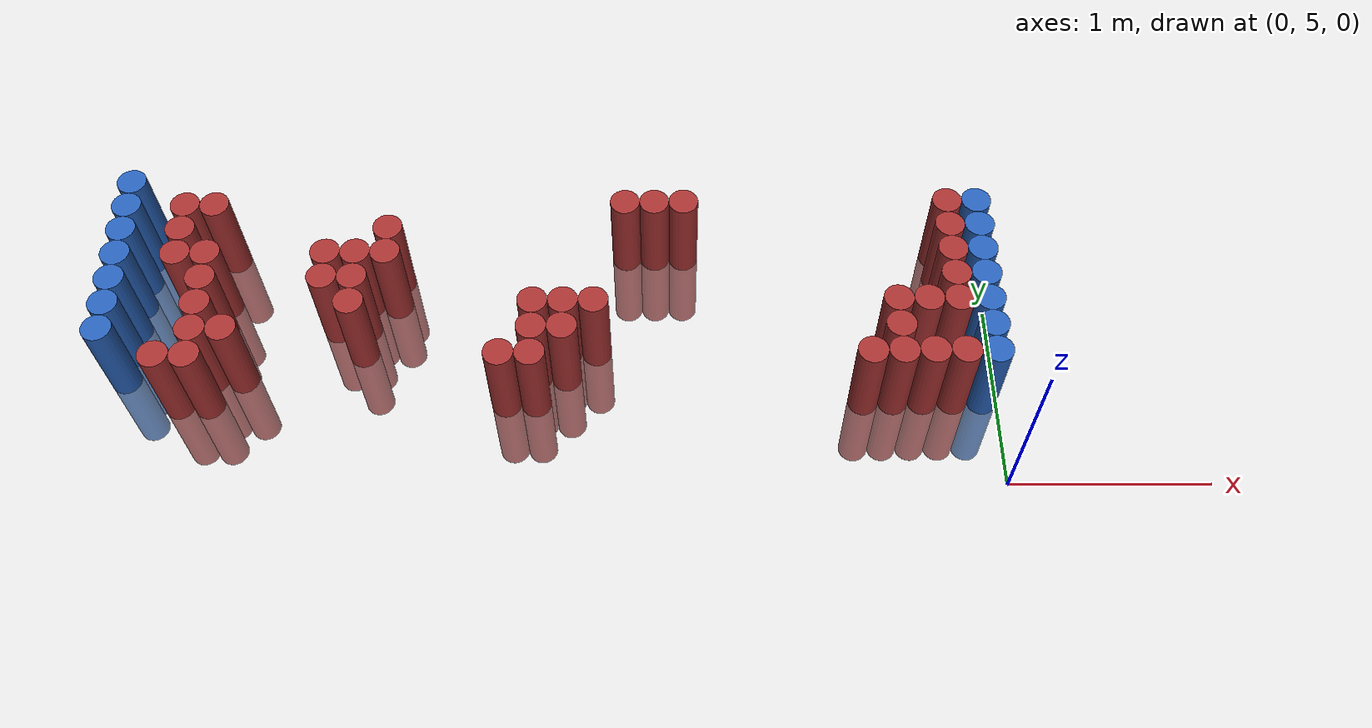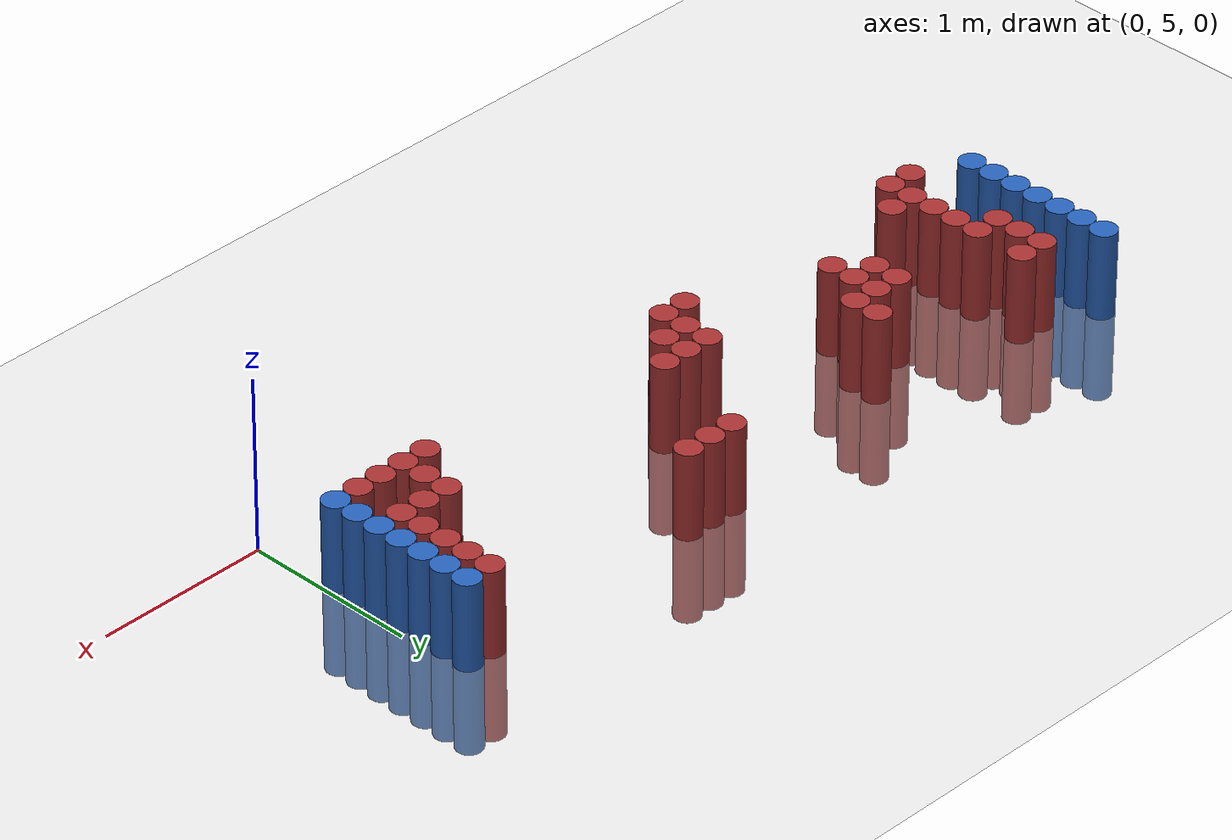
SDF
<sdf version="1.6">
 <world name="default">
  <model name="ground_plane">
   <static>1</static>
   <link name="link">
    <collision name="collision">
     <geometry><plane><normal>0 0 1</normal><size>100 100</size></plane></geometry>
     <surface><friction><ode><mu>100</mu><mu2>50</mu2></ode></friction></surface>
    </collision>
    <visual name="visual">
     <cast_shadows>0</cast_shadows>
     <geometry><plane><normal>0 0 1</normal><size>100 100</size></plane></geometry>
     <material>
      <script><uri>file://media/materials/scripts/gazebo.material</uri><name>Gazebo/Grey</name></script>
     </material>
    </visual>
   </link>
  </model>
  <model name="unit_cylinder_99">
   <static>1</static>
   <pose>-4.425000 5.625000 0.000000 0.000000 0.000000 0.000000</pose>
   <link name="link">
    <inertial>
     <mass>1</mass>
     <inertia><ixx>0.145833</ixx><ixy>0</ixy><ixz>0</ixz><iyy>0.145833</iyy><iyz>0</iyz><izz>0.125</izz></inertia>
    </inertial>
    <collision name="collision">
     <geometry><cylinder><radius>0.075000</radius><length>1</length></cylinder></geometry>
    </collision>
    <visual name="visual">
     <geometry><cylinder><radius>0.075000</radius><length>1</length></cylinder></geometry>
     <material>
      <ambient>0.152000 0.379000 0.720000 1</ambient>
      <diffuse>0.152000 0.379000 0.720000 1</diffuse>
     </material>
     <material>
      <script><name>Gazebo/Grey</name><uri>file://media/materials/scripts/gazebo.material</uri></script>
     </material>
    </visual>
   </link>
  </model>
  <model name="unit_cylinder_100">
   <static>1</static>
   <pose>-4.425000 5.775000 0.000000 0.000000 0.000000 0.000000</pose>
   <link name="link">
    <inertial>
     <mass>1</mass>
     <inertia><ixx>0.145833</ixx><ixy>0</ixy><ixz>0</ixz><iyy>0.145833</iyy><iyz>0</iyz><izz>0.125</izz></inertia>
    </inertial>
    <collision name="collision">
     <geometry><cylinder><radius>0.075000</radius><length>1</length></cylinder></geometry>
    </collision>
    <visual name="visual">
     <geometry><cylinder><radius>0.075000</radius><length>1</length></cylinder></geometry>
     <material>
      <ambient>0.152000 0.379000 0.720000 1</ambient>
      <diffuse>0.152000 0.379000 0.720000 1</diffuse>
     </material>
     <material>
      <script><name>Gazebo/Grey</name><uri>file://media/materials/scripts/gazebo.material</uri></script>
     </material>
    </visual>
   </link>
  </model>
  <model name="unit_cylinder_101">
   <static>1</static>
   <pose>-4.425000 5.925000 0.000000 0.000000 0.000000 0.000000</pose>
   <link name="link">
    <inertial>
     <mass>1</mass>
     <inertia><ixx>0.145833</ixx><ixy>0</ixy><ixz>0</ixz><iyy>0.145833</iyy><iyz>0</iyz><izz>0.125</izz></inertia>
    </inertial>
    <collision name="collision">
     <geometry><cylinder><radius>0.075000</radius><length>1</length></cylinder></geometry>
    </collision>
    <visual name="visual">
     <geometry><cylinder><radius>0.075000</radius><length>1</length></cylinder></geometry>
     <material>
      <ambient>0.152000 0.379000 0.720000 1</ambient>
      <diffuse>0.152000 0.379000 0.720000 1</diffuse>
     </material>
     <material>
      <script><name>Gazebo/Grey</name><uri>file://media/materials/scripts/gazebo.material</uri></script>
     </material>
    </visual>
   </link>
  </model>
  <model name="unit_cylinder_102">
   <static>1</static>
   <pose>-4.425000 6.075000 0.000000 0.000000 0.000000 0.000000</pose>
   <link name="link">
    <inertial>
     <mass>1</mass>
     <inertia><ixx>0.145833</ixx><ixy>0</ixy><ixz>0</ixz><iyy>0.145833</iyy><iyz>0</iyz><izz>0.125</izz></inertia>
    </inertial>
    <collision name="collision">
     <geometry><cylinder><radius>0.075000</radius><length>1</length></cylinder></geometry>
    </collision>
    <visual name="visual">
     <geometry><cylinder><radius>0.075000</radius><length>1</length></cylinder></geometry>
     <material>
      <ambient>0.152000 0.379000 0.720000 1</ambient>
      <diffuse>0.152000 0.379000 0.720000 1</diffuse>
     </material>
     <material>
      <script><name>Gazebo/Grey</name><uri>file://media/materials/scripts/gazebo.material</uri></script>
     </material>
    </visual>
   </link>
  </model>
  <model name="unit_cylinder_103">
   <static>1</static>
   <pose>-4.425000 6.225000 0.000000 0.000000 0.000000 0.000000</pose>
   <link name="link">
    <inertial>
     <mass>1</mass>
     <inertia><ixx>0.145833</ixx><ixy>0</ixy><ixz>0</ixz><iyy>0.145833</iyy><iyz>0</iyz><izz>0.125</izz></inertia>
    </inertial>
    <collision name="collision">
     <geometry><cylinder><radius>0.075000</radius><length>1</length></cylinder></geometry>
    </collision>
    <visual name="visual">
     <geometry><cylinder><radius>0.075000</radius><length>1</length></cylinder></geometry>
     <material>
      <ambient>0.152000 0.379000 0.720000 1</ambient>
      <diffuse>0.152000 0.379000 0.720000 1</diffuse>
     </material>
     <material>
      <script><name>Gazebo/Grey</name><uri>file://media/materials/scripts/gazebo.material</uri></script>
     </material>
    </visual>
   </link>
  </model>
  <model name="unit_cylinder_104">
   <static>1</static>
   <pose>-4.425000 6.375000 0.000000 0.000000 0.000000 0.000000</pose>
   <link name="link">
    <inertial>
     <mass>1</mass>
     <inertia><ixx>0.145833</ixx><ixy>0</ixy><ixz>0</ixz><iyy>0.145833</iyy><iyz>0</iyz><izz>0.125</izz></inertia>
    </inertial>
    <collision name="collision">
     <geometry><cylinder><radius>0.075000</radius><length>1</length></cylinder></geometry>
    </collision>
    <visual name="visual">
     <geometry><cylinder><radius>0.075000</radius><length>1</length></cylinder></geometry>
     <material>
      <ambient>0.152000 0.379000 0.720000 1</ambient>
      <diffuse>0.152000 0.379000 0.720000 1</diffuse>
     </material>
     <material>
      <script><name>Gazebo/Grey</name><uri>file://media/materials/scripts/gazebo.material</uri></script>
     </material>
    </visual>
   </link>
  </model>
  <model name="unit_cylinder_105">
   <static>1</static>
   <pose>-4.425000 6.525000 0.000000 0.000000 0.000000 0.000000</pose>
   <link name="link">
    <inertial>
     <mass>1</mass>
     <inertia><ixx>0.145833</ixx><ixy>0</ixy><ixz>0</ixz><iyy>0.145833</iyy><iyz>0</iyz><izz>0.125</izz></inertia>
    </inertial>
    <collision name="collision">
     <geometry><cylinder><radius>0.075000</radius><length>1</length></cylinder></geometry>
    </collision>
    <visual name="visual">
     <geometry><cylinder><radius>0.075000</radius><length>1</length></cylinder></geometry>
     <material>
      <ambient>0.152000 0.379000 0.720000 1</ambient>
      <diffuse>0.152000 0.379000 0.720000 1</diffuse>
     </material>
     <material>
      <script><name>Gazebo/Grey</name><uri>file://media/materials/scripts/gazebo.material</uri></script>
     </material>
    </visual>
   </link>
  </model>
  <model name="unit_cylinder_137">
   <static>1</static>
   <pose>-4.125000 5.475000 0.000000 0.000000 0.000000 0.000000</pose>
   <link name="link">
    <inertial>
     <mass>1</mass>
     <inertia><ixx>0.145833</ixx><ixy>0</ixy><ixz>0</ixz><iyy>0.145833</iyy><iyz>0</iyz><izz>0.125</izz></inertia>
    </inertial>
    <collision name="collision">
     <geometry><cylinder><radius>0.075000</radius><length>1</length></cylinder></geometry>
    </collision>
    <visual name="visual">
     <geometry><cylinder><radius>0.075000</radius><length>1</length></cylinder></geometry>
     <material>
      <ambient>0.648000 0.192000 0.192000 1</ambient>
      <diffuse>0.648000 0.192000 0.192000 1</diffuse>
     </material>
     <material>
      <script><name>Gazebo/Grey</name><uri>file://media/materials/scripts/gazebo.material</uri></script>
     </material>
    </visual>
   </link>
  </model>
  <model name="unit_cylinder_138">
   <static>1</static>
   <pose>-4.125000 6.075000 0.000000 0.000000 0.000000 0.000000</pose>
   <link name="link">
    <inertial>
     <mass>1</mass>
     <inertia><ixx>0.145833</ixx><ixy>0</ixy><ixz>0</ixz><iyy>0.145833</iyy><iyz>0</iyz><izz>0.125</izz></inertia>
    </inertial>
    <collision name="collision">
     <geometry><cylinder><radius>0.075000</radius><length>1</length></cylinder></geometry>
    </collision>
    <visual name="visual">
     <geometry><cylinder><radius>0.075000</radius><length>1</length></cylinder></geometry>
     <material>
      <ambient>0.648000 0.192000 0.192000 1</ambient>
      <diffuse>0.648000 0.192000 0.192000 1</diffuse>
     </material>
     <material>
      <script><name>Gazebo/Grey</name><uri>file://media/materials/scripts/gazebo.material</uri></script>
     </material>
    </visual>
   </link>
  </model>
  <model name="unit_cylinder_139">
   <static>1</static>
   <pose>-4.125000 6.225000 0.000000 0.000000 0.000000 0.000000</pose>
   <link name="link">
    <inertial>
     <mass>1</mass>
     <inertia><ixx>0.145833</ixx><ixy>0</ixy><ixz>0</ixz><iyy>0.145833</iyy><iyz>0</iyz><izz>0.125</izz></inertia>
    </inertial>
    <collision name="collision">
     <geometry><cylinder><radius>0.075000</radius><length>1</length></cylinder></geometry>
    </collision>
    <visual name="visual">
     <geometry><cylinder><radius>0.075000</radius><length>1</length></cylinder></geometry>
     <material>
      <ambient>0.648000 0.192000 0.192000 1</ambient>
      <diffuse>0.648000 0.192000 0.192000 1</diffuse>
     </material>
     <material>
      <script><name>Gazebo/Grey</name><uri>file://media/materials/scripts/gazebo.material</uri></script>
     </material>
    </visual>
   </link>
  </model>
  <model name="unit_cylinder_140">
   <static>1</static>
   <pose>-4.125000 6.375000 0.000000 0.000000 0.000000 0.000000</pose>
   <link name="link">
    <inertial>
     <mass>1</mass>
     <inertia><ixx>0.145833</ixx><ixy>0</ixy><ixz>0</ixz><iyy>0.145833</iyy><iyz>0</iyz><izz>0.125</izz></inertia>
    </inertial>
    <collision name="collision">
     <geometry><cylinder><radius>0.075000</radius><length>1</length></cylinder></geometry>
    </collision>
    <visual name="visual">
     <geometry><cylinder><radius>0.075000</radius><length>1</length></cylinder></geometry>
     <material>
      <ambient>0.648000 0.192000 0.192000 1</ambient>
      <diffuse>0.648000 0.192000 0.192000 1</diffuse>
     </material>
     <material>
      <script><name>Gazebo/Grey</name><uri>file://media/materials/scripts/gazebo.material</uri></script>
     </material>
    </visual>
   </link>
  </model>
  <model name="unit_cylinder_147">
   <static>1</static>
   <pose>-3.975000 5.475000 0.000000 0.000000 0.000000 0.000000</pose>
   <link name="link">
    <inertial>
     <mass>1</mass>
     <inertia><ixx>0.145833</ixx><ixy>0</ixy><ixz>0</ixz><iyy>0.145833</iyy><iyz>0</iyz><izz>0.125</izz></inertia>
    </inertial>
    <collision name="collision">
     <geometry><cylinder><radius>0.075000</radius><length>1</length></cylinder></geometry>
    </collision>
    <visual name="visual">
     <geometry><cylinder><radius>0.075000</radius><length>1</length></cylinder></geometry>
     <material>
      <ambient>0.648000 0.192000 0.192000 1</ambient>
      <diffuse>0.648000 0.192000 0.192000 1</diffuse>
     </material>
     <material>
      <script><name>Gazebo/Grey</name><uri>file://media/materials/scripts/gazebo.material</uri></script>
     </material>
    </visual>
   </link>
  </model>
  <model name="unit_cylinder_148">
   <static>1</static>
   <pose>-3.975000 5.625000 0.000000 0.000000 0.000000 0.000000</pose>
   <link name="link">
    <inertial>
     <mass>1</mass>
     <inertia><ixx>0.145833</ixx><ixy>0</ixy><ixz>0</ixz><iyy>0.145833</iyy><iyz>0</iyz><izz>0.125</izz></inertia>
    </inertial>
    <collision name="collision">
     <geometry><cylinder><radius>0.075000</radius><length>1</length></cylinder></geometry>
    </collision>
    <visual name="visual">
     <geometry><cylinder><radius>0.075000</radius><length>1</length></cylinder></geometry>
     <material>
      <ambient>0.648000 0.192000 0.192000 1</ambient>
      <diffuse>0.648000 0.192000 0.192000 1</diffuse>
     </material>
     <material>
      <script><name>Gazebo/Grey</name><uri>file://media/materials/scripts/gazebo.material</uri></script>
     </material>
    </visual>
   </link>
  </model>
  <model name="unit_cylinder_149">
   <static>1</static>
   <pose>-3.975000 5.775000 0.000000 0.000000 0.000000 0.000000</pose>
   <link name="link">
    <inertial>
     <mass>1</mass>
     <inertia><ixx>0.145833</ixx><ixy>0</ixy><ixz>0</ixz><iyy>0.145833</iyy><iyz>0</iyz><izz>0.125</izz></inertia>
    </inertial>
    <collision name="collision">
     <geometry><cylinder><radius>0.075000</radius><length>1</length></cylinder></geometry>
    </collision>
    <visual name="visual">
     <geometry><cylinder><radius>0.075000</radius><length>1</length></cylinder></geometry>
     <material>
      <ambient>0.648000 0.192000 0.192000 1</ambient>
      <diffuse>0.648000 0.192000 0.192000 1</diffuse>
     </material>
     <material>
      <script><name>Gazebo/Grey</name><uri>file://media/materials/scripts/gazebo.material</uri></script>
     </material>
    </visual>
   </link>
  </model>
  <model name="unit_cylinder_150">
   <static>1</static>
   <pose>-3.975000 5.925000 0.000000 0.000000 0.000000 0.000000</pose>
   <link name="link">
    <inertial>
     <mass>1</mass>
     <inertia><ixx>0.145833</ixx><ixy>0</ixy><ixz>0</ixz><iyy>0.145833</iyy><iyz>0</iyz><izz>0.125</izz></inertia>
    </inertial>
    <collision name="collision">
     <geometry><cylinder><radius>0.075000</radius><length>1</length></cylinder></geometry>
    </collision>
    <visual name="visual">
     <geometry><cylinder><radius>0.075000</radius><length>1</length></cylinder></geometry>
     <material>
      <ambient>0.648000 0.192000 0.192000 1</ambient>
      <diffuse>0.648000 0.192000 0.192000 1</diffuse>
     </material>
     <material>
      <script><name>Gazebo/Grey</name><uri>file://media/materials/scripts/gazebo.material</uri></script>
     </material>
    </visual>
   </link>
  </model>
  <model name="unit_cylinder_151">
   <static>1</static>
   <pose>-3.975000 6.075000 0.000000 0.000000 0.000000 0.000000</pose>
   <link name="link">
    <inertial>
     <mass>1</mass>
     <inertia><ixx>0.145833</ixx><ixy>0</ixy><ixz>0</ixz><iyy>0.145833</iyy><iyz>0</iyz><izz>0.125</izz></inertia>
    </inertial>
    <collision name="collision">
     <geometry><cylinder><radius>0.075000</radius><length>1</length></cylinder></geometry>
    </collision>
    <visual name="visual">
     <geometry><cylinder><radius>0.075000</radius><length>1</length></cylinder></geometry>
     <material>
      <ambient>0.648000 0.192000 0.192000 1</ambient>
      <diffuse>0.648000 0.192000 0.192000 1</diffuse>
     </material>
     <material>
      <script><name>Gazebo/Grey</name><uri>file://media/materials/scripts/gazebo.material</uri></script>
     </material>
    </visual>
   </link>
  </model>
  <model name="unit_cylinder_152">
   <static>1</static>
   <pose>-3.975000 6.375000 0.000000 0.000000 0.000000 0.000000</pose>
   <link name="link">
    <inertial>
     <mass>1</mass>
     <inertia><ixx>0.145833</ixx><ixy>0</ixy><ixz>0</ixz><iyy>0.145833</iyy><iyz>0</iyz><izz>0.125</izz></inertia>
    </inertial>
    <collision name="collision">
     <geometry><cylinder><radius>0.075000</radius><length>1</length></cylinder></geometry>
    </collision>
    <visual name="visual">
     <geometry><cylinder><radius>0.075000</radius><length>1</length></cylinder></geometry>
     <material>
      <ambient>0.648000 0.192000 0.192000 1</ambient>
      <diffuse>0.648000 0.192000 0.192000 1</diffuse>
     </material>
     <material>
      <script><name>Gazebo/Grey</name><uri>file://media/materials/scripts/gazebo.material</uri></script>
     </material>
    </visual>
   </link>
  </model>
  <model name="unit_cylinder_158">
   <static>1</static>
   <pose>-3.825000 5.625000 0.000000 0.000000 0.000000 0.000000</pose>
   <link name="link">
    <inertial>
     <mass>1</mass>
     <inertia><ixx>0.145833</ixx><ixy>0</ixy><ixz>0</ixz><iyy>0.145833</iyy><iyz>0</iyz><izz>0.125</izz></inertia>
    </inertial>
    <collision name="collision">
     <geometry><cylinder><radius>0.075000</radius><length>1</length></cylinder></geometry>
    </collision>
    <visual name="visual">
     <geometry><cylinder><radius>0.075000</radius><length>1</length></cylinder></geometry>
     <material>
      <ambient>0.648000 0.192000 0.192000 1</ambient>
      <diffuse>0.648000 0.192000 0.192000 1</diffuse>
     </material>
     <material>
      <script><name>Gazebo/Grey</name><uri>file://media/materials/scripts/gazebo.material</uri></script>
     </material>
    </visual>
   </link>
  </model>
  <model name="unit_cylinder_175">
   <static>1</static>
   <pose>-3.375000 5.925000 0.000000 0.000000 0.000000 0.000000</pose>
   <link name="link">
    <inertial>
     <mass>1</mass>
     <inertia><ixx>0.145833</ixx><ixy>0</ixy><ixz>0</ixz><iyy>0.145833</iyy><iyz>0</iyz><izz>0.125</izz></inertia>
    </inertial>
    <collision name="collision">
     <geometry><cylinder><radius>0.075000</radius><length>1</length></cylinder></geometry>
    </collision>
    <visual name="visual">
     <geometry><cylinder><radius>0.075000</radius><length>1</length></cylinder></geometry>
     <material>
      <ambient>0.648000 0.192000 0.192000 1</ambient>
      <diffuse>0.648000 0.192000 0.192000 1</diffuse>
     </material>
     <material>
      <script><name>Gazebo/Grey</name><uri>file://media/materials/scripts/gazebo.material</uri></script>
     </material>
    </visual>
   </link>
  </model>
  <model name="unit_cylinder_176">
   <static>1</static>
   <pose>-3.375000 6.075000 0.000000 0.000000 0.000000 0.000000</pose>
   <link name="link">
    <inertial>
     <mass>1</mass>
     <inertia><ixx>0.145833</ixx><ixy>0</ixy><ixz>0</ixz><iyy>0.145833</iyy><iyz>0</iyz><izz>0.125</izz></inertia>
    </inertial>
    <collision name="collision">
     <geometry><cylinder><radius>0.075000</radius><length>1</length></cylinder></geometry>
    </collision>
    <visual name="visual">
     <geometry><cylinder><radius>0.075000</radius><length>1</length></cylinder></geometry>
     <material>
      <ambient>0.648000 0.192000 0.192000 1</ambient>
      <diffuse>0.648000 0.192000 0.192000 1</diffuse>
     </material>
     <material>
      <script><name>Gazebo/Grey</name><uri>file://media/materials/scripts/gazebo.material</uri></script>
     </material>
    </visual>
   </link>
  </model>
  <model name="unit_cylinder_182">
   <static>1</static>
   <pose>-3.225000 5.775000 0.000000 0.000000 0.000000 0.000000</pose>
   <link name="link">
    <inertial>
     <mass>1</mass>
     <inertia><ixx>0.145833</ixx><ixy>0</ixy><ixz>0</ixz><iyy>0.145833</iyy><iyz>0</iyz><izz>0.125</izz></inertia>
    </inertial>
    <collision name="collision">
     <geometry><cylinder><radius>0.075000</radius><length>1</length></cylinder></geometry>
    </collision>
    <visual name="visual">
     <geometry><cylinder><radius>0.075000</radius><length>1</length></cylinder></geometry>
     <material>
      <ambient>0.648000 0.192000 0.192000 1</ambient>
      <diffuse>0.648000 0.192000 0.192000 1</diffuse>
     </material>
     <material>
      <script><name>Gazebo/Grey</name><uri>file://media/materials/scripts/gazebo.material</uri></script>
     </material>
    </visual>
   </link>
  </model>
  <model name="unit_cylinder_183">
   <static>1</static>
   <pose>-3.225000 5.925000 0.000000 0.000000 0.000000 0.000000</pose>
   <link name="link">
    <inertial>
     <mass>1</mass>
     <inertia><ixx>0.145833</ixx><ixy>0</ixy><ixz>0</ixz><iyy>0.145833</iyy><iyz>0</iyz><izz>0.125</izz></inertia>
    </inertial>
    <collision name="collision">
     <geometry><cylinder><radius>0.075000</radius><length>1</length></cylinder></geometry>
    </collision>
    <visual name="visual">
     <geometry><cylinder><radius>0.075000</radius><length>1</length></cylinder></geometry>
     <material>
      <ambient>0.648000 0.192000 0.192000 1</ambient>
      <diffuse>0.648000 0.192000 0.192000 1</diffuse>
     </material>
     <material>
      <script><name>Gazebo/Grey</name><uri>file://media/materials/scripts/gazebo.material</uri></script>
     </material>
    </visual>
   </link>
  </model>
  <model name="unit_cylinder_184">
   <static>1</static>
   <pose>-3.225000 6.075000 0.000000 0.000000 0.000000 0.000000</pose>
   <link name="link">
    <inertial>
     <mass>1</mass>
     <inertia><ixx>0.145833</ixx><ixy>0</ixy><ixz>0</ixz><iyy>0.145833</iyy><iyz>0</iyz><izz>0.125</izz></inertia>
    </inertial>
    <collision name="collision">
     <geometry><cylinder><radius>0.075000</radius><length>1</length></cylinder></geometry>
    </collision>
    <visual name="visual">
     <geometry><cylinder><radius>0.075000</radius><length>1</length></cylinder></geometry>
     <material>
      <ambient>0.648000 0.192000 0.192000 1</ambient>
      <diffuse>0.648000 0.192000 0.192000 1</diffuse>
     </material>
     <material>
      <script><name>Gazebo/Grey</name><uri>file://media/materials/scripts/gazebo.material</uri></script>
     </material>
    </visual>
   </link>
  </model>
  <model name="unit_cylinder_192">
   <static>1</static>
   <pose>-3.075000 6.075000 0.000000 0.000000 0.000000 0.000000</pose>
   <link name="link">
    <inertial>
     <mass>1</mass>
     <inertia><ixx>0.145833</ixx><ixy>0</ixy><ixz>0</ixz><iyy>0.145833</iyy><iyz>0</iyz><izz>0.125</izz></inertia>
    </inertial>
    <collision name="collision">
     <geometry><cylinder><radius>0.075000</radius><length>1</length></cylinder></geometry>
    </collision>
    <visual name="visual">
     <geometry><cylinder><radius>0.075000</radius><length>1</length></cylinder></geometry>
     <material>
      <ambient>0.648000 0.192000 0.192000 1</ambient>
      <diffuse>0.648000 0.192000 0.192000 1</diffuse>
     </material>
     <material>
      <script><name>Gazebo/Grey</name><uri>file://media/materials/scripts/gazebo.material</uri></script>
     </material>
    </visual>
   </link>
  </model>
  <model name="unit_cylinder_193">
   <static>1</static>
   <pose>-3.075000 6.225000 0.000000 0.000000 0.000000 0.000000</pose>
   <link name="link">
    <inertial>
     <mass>1</mass>
     <inertia><ixx>0.145833</ixx><ixy>0</ixy><ixz>0</ixz><iyy>0.145833</iyy><iyz>0</iyz><izz>0.125</izz></inertia>
    </inertial>
    <collision name="collision">
     <geometry><cylinder><radius>0.075000</radius><length>1</length></cylinder></geometry>
    </collision>
    <visual name="visual">
     <geometry><cylinder><radius>0.075000</radius><length>1</length></cylinder></geometry>
     <material>
      <ambient>0.648000 0.192000 0.192000 1</ambient>
      <diffuse>0.648000 0.192000 0.192000 1</diffuse>
     </material>
     <material>
      <script><name>Gazebo/Grey</name><uri>file://media/materials/scripts/gazebo.material</uri></script>
     </material>
    </visual>
   </link>
  </model>
  <model name="unit_cylinder_210">
   <static>1</static>
   <pose>-2.475000 5.475000 0.000000 0.000000 0.000000 0.000000</pose>
   <link name="link">
    <inertial>
     <mass>1</mass>
     <inertia><ixx>0.145833</ixx><ixy>0</ixy><ixz>0</ixz><iyy>0.145833</iyy><iyz>0</iyz><izz>0.125</izz></inertia>
    </inertial>
    <collision name="collision">
     <geometry><cylinder><radius>0.075000</radius><length>1</length></cylinder></geometry>
    </collision>
    <visual name="visual">
     <geometry><cylinder><radius>0.075000</radius><length>1</length></cylinder></geometry>
     <material>
      <ambient>0.648000 0.192000 0.192000 1</ambient>
      <diffuse>0.648000 0.192000 0.192000 1</diffuse>
     </material>
     <material>
      <script><name>Gazebo/Grey</name><uri>file://media/materials/scripts/gazebo.material</uri></script>
     </material>
    </visual>
   </link>
  </model>
  <model name="unit_cylinder_217">
   <static>1</static>
   <pose>-2.325000 5.475000 0.000000 0.000000 0.000000 0.000000</pose>
   <link name="link">
    <inertial>
     <mass>1</mass>
     <inertia><ixx>0.145833</ixx><ixy>0</ixy><ixz>0</ixz><iyy>0.145833</iyy><iyz>0</iyz><izz>0.125</izz></inertia>
    </inertial>
    <collision name="collision">
     <geometry><cylinder><radius>0.075000</radius><length>1</length></cylinder></geometry>
    </collision>
    <visual name="visual">
     <geometry><cylinder><radius>0.075000</radius><length>1</length></cylinder></geometry>
     <material>
      <ambient>0.648000 0.192000 0.192000 1</ambient>
      <diffuse>0.648000 0.192000 0.192000 1</diffuse>
     </material>
     <material>
      <script><name>Gazebo/Grey</name><uri>file://media/materials/scripts/gazebo.material</uri></script>
     </material>
    </visual>
   </link>
  </model>
  <model name="unit_cylinder_218">
   <static>1</static>
   <pose>-2.325000 5.625000 0.000000 0.000000 0.000000 0.000000</pose>
   <link name="link">
    <inertial>
     <mass>1</mass>
     <inertia><ixx>0.145833</ixx><ixy>0</ixy><ixz>0</ixz><iyy>0.145833</iyy><iyz>0</iyz><izz>0.125</izz></inertia>
    </inertial>
    <collision name="collision">
     <geometry><cylinder><radius>0.075000</radius><length>1</length></cylinder></geometry>
    </collision>
    <visual name="visual">
     <geometry><cylinder><radius>0.075000</radius><length>1</length></cylinder></geometry>
     <material>
      <ambient>0.648000 0.192000 0.192000 1</ambient>
      <diffuse>0.648000 0.192000 0.192000 1</diffuse>
     </material>
     <material>
      <script><name>Gazebo/Grey</name><uri>file://media/materials/scripts/gazebo.material</uri></script>
     </material>
    </visual>
   </link>
  </model>
  <model name="unit_cylinder_219">
   <static>1</static>
   <pose>-2.325000 5.775000 0.000000 0.000000 0.000000 0.000000</pose>
   <link name="link">
    <inertial>
     <mass>1</mass>
     <inertia><ixx>0.145833</ixx><ixy>0</ixy><ixz>0</ixz><iyy>0.145833</iyy><iyz>0</iyz><izz>0.125</izz></inertia>
    </inertial>
    <collision name="collision">
     <geometry><cylinder><radius>0.075000</radius><length>1</length></cylinder></geometry>
    </collision>
    <visual name="visual">
     <geometry><cylinder><radius>0.075000</radius><length>1</length></cylinder></geometry>
     <material>
      <ambient>0.648000 0.192000 0.192000 1</ambient>
      <diffuse>0.648000 0.192000 0.192000 1</diffuse>
     </material>
     <material>
      <script><name>Gazebo/Grey</name><uri>file://media/materials/scripts/gazebo.material</uri></script>
     </material>
    </visual>
   </link>
  </model>
  <model name="unit_cylinder_221">
   <static>1</static>
   <pose>-2.175000 5.625000 0.000000 0.000000 0.000000 0.000000</pose>
   <link name="link">
    <inertial>
     <mass>1</mass>
     <inertia><ixx>0.145833</ixx><ixy>0</ixy><ixz>0</ixz><iyy>0.145833</iyy><iyz>0</iyz><izz>0.125</izz></inertia>
    </inertial>
    <collision name="collision">
     <geometry><cylinder><radius>0.075000</radius><length>1</length></cylinder></geometry>
    </collision>
    <visual name="visual">
     <geometry><cylinder><radius>0.075000</radius><length>1</length></cylinder></geometry>
     <material>
      <ambient>0.648000 0.192000 0.192000 1</ambient>
      <diffuse>0.648000 0.192000 0.192000 1</diffuse>
     </material>
     <material>
      <script><name>Gazebo/Grey</name><uri>file://media/materials/scripts/gazebo.material</uri></script>
     </material>
    </visual>
   </link>
  </model>
  <model name="unit_cylinder_222">
   <static>1</static>
   <pose>-2.175000 5.775000 0.000000 0.000000 0.000000 0.000000</pose>
   <link name="link">
    <inertial>
     <mass>1</mass>
     <inertia><ixx>0.145833</ixx><ixy>0</ixy><ixz>0</ixz><iyy>0.145833</iyy><iyz>0</iyz><izz>0.125</izz></inertia>
    </inertial>
    <collision name="collision">
     <geometry><cylinder><radius>0.075000</radius><length>1</length></cylinder></geometry>
    </collision>
    <visual name="visual">
     <geometry><cylinder><radius>0.075000</radius><length>1</length></cylinder></geometry>
     <material>
      <ambient>0.648000 0.192000 0.192000 1</ambient>
      <diffuse>0.648000 0.192000 0.192000 1</diffuse>
     </material>
     <material>
      <script><name>Gazebo/Grey</name><uri>file://media/materials/scripts/gazebo.material</uri></script>
     </material>
    </visual>
   </link>
  </model>
  <model name="unit_cylinder_226">
   <static>1</static>
   <pose>-2.025000 5.775000 0.000000 0.000000 0.000000 0.000000</pose>
   <link name="link">
    <inertial>
     <mass>1</mass>
     <inertia><ixx>0.145833</ixx><ixy>0</ixy><ixz>0</ixz><iyy>0.145833</iyy><iyz>0</iyz><izz>0.125</izz></inertia>
    </inertial>
    <collision name="collision">
     <geometry><cylinder><radius>0.075000</radius><length>1</length></cylinder></geometry>
    </collision>
    <visual name="visual">
     <geometry><cylinder><radius>0.075000</radius><length>1</length></cylinder></geometry>
     <material>
      <ambient>0.648000 0.192000 0.192000 1</ambient>
      <diffuse>0.648000 0.192000 0.192000 1</diffuse>
     </material>
     <material>
      <script><name>Gazebo/Grey</name><uri>file://media/materials/scripts/gazebo.material</uri></script>
     </material>
    </visual>
   </link>
  </model>
  <model name="unit_cylinder_235">
   <static>1</static>
   <pose>-1.875000 6.375000 0.000000 0.000000 0.000000 0.000000</pose>
   <link name="link">
    <inertial>
     <mass>1</mass>
     <inertia><ixx>0.145833</ixx><ixy>0</ixy><ixz>0</ixz><iyy>0.145833</iyy><iyz>0</iyz><izz>0.125</izz></inertia>
    </inertial>
    <collision name="collision">
     <geometry><cylinder><radius>0.075000</radius><length>1</length></cylinder></geometry>
    </collision>
    <visual name="visual">
     <geometry><cylinder><radius>0.075000</radius><length>1</length></cylinder></geometry>
     <material>
      <ambient>0.648000 0.192000 0.192000 1</ambient>
      <diffuse>0.648000 0.192000 0.192000 1</diffuse>
     </material>
     <material>
      <script><name>Gazebo/Grey</name><uri>file://media/materials/scripts/gazebo.material</uri></script>
     </material>
    </visual>
   </link>
  </model>
  <model name="unit_cylinder_242">
   <static>1</static>
   <pose>-1.725000 6.375000 0.000000 0.000000 0.000000 0.000000</pose>
   <link name="link">
    <inertial>
     <mass>1</mass>
     <inertia><ixx>0.145833</ixx><ixy>0</ixy><ixz>0</ixz><iyy>0.145833</iyy><iyz>0</iyz><izz>0.125</izz></inertia>
    </inertial>
    <collision name="collision">
     <geometry><cylinder><radius>0.075000</radius><length>1</length></cylinder></geometry>
    </collision>
    <visual name="visual">
     <geometry><cylinder><radius>0.075000</radius><length>1</length></cylinder></geometry>
     <material>
      <ambient>0.648000 0.192000 0.192000 1</ambient>
      <diffuse>0.648000 0.192000 0.192000 1</diffuse>
     </material>
     <material>
      <script><name>Gazebo/Grey</name><uri>file://media/materials/scripts/gazebo.material</uri></script>
     </material>
    </visual>
   </link>
  </model>
  <model name="unit_cylinder_248">
   <static>1</static>
   <pose>-1.575000 6.375000 0.000000 0.000000 0.000000 0.000000</pose>
   <link name="link">
    <inertial>
     <mass>1</mass>
     <inertia><ixx>0.145833</ixx><ixy>0</ixy><ixz>0</ixz><iyy>0.145833</iyy><iyz>0</iyz><izz>0.125</izz></inertia>
    </inertial>
    <collision name="collision">
     <geometry><cylinder><radius>0.075000</radius><length>1</length></cylinder></geometry>
    </collision>
    <visual name="visual">
     <geometry><cylinder><radius>0.075000</radius><length>1</length></cylinder></geometry>
     <material>
      <ambient>0.648000 0.192000 0.192000 1</ambient>
      <diffuse>0.648000 0.192000 0.192000 1</diffuse>
     </material>
     <material>
      <script><name>Gazebo/Grey</name><uri>file://media/materials/scripts/gazebo.material</uri></script>
     </material>
    </visual>
   </link>
  </model>
  <model name="unit_cylinder_260">
   <static>1</static>
   <pose>-0.675000 5.475000 0.000000 0.000000 0.000000 0.000000</pose>
   <link name="link">
    <inertial>
     <mass>1</mass>
     <inertia><ixx>0.145833</ixx><ixy>0</ixy><ixz>0</ixz><iyy>0.145833</iyy><iyz>0</iyz><izz>0.125</izz></inertia>
    </inertial>
    <collision name="collision">
     <geometry><cylinder><radius>0.075000</radius><length>1</length></cylinder></geometry>
    </collision>
    <visual name="visual">
     <geometry><cylinder><radius>0.075000</radius><length>1</length></cylinder></geometry>
     <material>
      <ambient>0.648000 0.192000 0.192000 1</ambient>
      <diffuse>0.648000 0.192000 0.192000 1</diffuse>
     </material>
     <material>
      <script><name>Gazebo/Grey</name><uri>file://media/materials/scripts/gazebo.material</uri></script>
     </material>
    </visual>
   </link>
  </model>
  <model name="unit_cylinder_261">
   <static>1</static>
   <pose>-0.525000 5.475000 0.000000 0.000000 0.000000 0.000000</pose>
   <link name="link">
    <inertial>
     <mass>1</mass>
     <inertia><ixx>0.145833</ixx><ixy>0</ixy><ixz>0</ixz><iyy>0.145833</iyy><iyz>0</iyz><izz>0.125</izz></inertia>
    </inertial>
    <collision name="collision">
     <geometry><cylinder><radius>0.075000</radius><length>1</length></cylinder></geometry>
    </collision>
    <visual name="visual">
     <geometry><cylinder><radius>0.075000</radius><length>1</length></cylinder></geometry>
     <material>
      <ambient>0.648000 0.192000 0.192000 1</ambient>
      <diffuse>0.648000 0.192000 0.192000 1</diffuse>
     </material>
     <material>
      <script><name>Gazebo/Grey</name><uri>file://media/materials/scripts/gazebo.material</uri></script>
     </material>
    </visual>
   </link>
  </model>
  <model name="unit_cylinder_262">
   <static>1</static>
   <pose>-0.525000 5.625000 0.000000 0.000000 0.000000 0.000000</pose>
   <link name="link">
    <inertial>
     <mass>1</mass>
     <inertia><ixx>0.145833</ixx><ixy>0</ixy><ixz>0</ixz><iyy>0.145833</iyy><iyz>0</iyz><izz>0.125</izz></inertia>
    </inertial>
    <collision name="collision">
     <geometry><cylinder><radius>0.075000</radius><length>1</length></cylinder></geometry>
    </collision>
    <visual name="visual">
     <geometry><cylinder><radius>0.075000</radius><length>1</length></cylinder></geometry>
     <material>
      <ambient>0.648000 0.192000 0.192000 1</ambient>
      <diffuse>0.648000 0.192000 0.192000 1</diffuse>
     </material>
     <material>
      <script><name>Gazebo/Grey</name><uri>file://media/materials/scripts/gazebo.material</uri></script>
     </material>
    </visual>
   </link>
  </model>
  <model name="unit_cylinder_263">
   <static>1</static>
   <pose>-0.525000 5.775000 0.000000 0.000000 0.000000 0.000000</pose>
   <link name="link">
    <inertial>
     <mass>1</mass>
     <inertia><ixx>0.145833</ixx><ixy>0</ixy><ixz>0</ixz><iyy>0.145833</iyy><iyz>0</iyz><izz>0.125</izz></inertia>
    </inertial>
    <collision name="collision">
     <geometry><cylinder><radius>0.075000</radius><length>1</length></cylinder></geometry>
    </collision>
    <visual name="visual">
     <geometry><cylinder><radius>0.075000</radius><length>1</length></cylinder></geometry>
     <material>
      <ambient>0.648000 0.192000 0.192000 1</ambient>
      <diffuse>0.648000 0.192000 0.192000 1</diffuse>
     </material>
     <material>
      <script><name>Gazebo/Grey</name><uri>file://media/materials/scripts/gazebo.material</uri></script>
     </material>
    </visual>
   </link>
  </model>
  <model name="unit_cylinder_266">
   <static>1</static>
   <pose>-0.375000 5.475000 0.000000 0.000000 0.000000 0.000000</pose>
   <link name="link">
    <inertial>
     <mass>1</mass>
     <inertia><ixx>0.145833</ixx><ixy>0</ixy><ixz>0</ixz><iyy>0.145833</iyy><iyz>0</iyz><izz>0.125</izz></inertia>
    </inertial>
    <collision name="collision">
     <geometry><cylinder><radius>0.075000</radius><length>1</length></cylinder></geometry>
    </collision>
    <visual name="visual">
     <geometry><cylinder><radius>0.075000</radius><length>1</length></cylinder></geometry>
     <material>
      <ambient>0.648000 0.192000 0.192000 1</ambient>
      <diffuse>0.648000 0.192000 0.192000 1</diffuse>
     </material>
     <material>
      <script><name>Gazebo/Grey</name><uri>file://media/materials/scripts/gazebo.material</uri></script>
     </material>
    </visual>
   </link>
  </model>
  <model name="unit_cylinder_267">
   <static>1</static>
   <pose>-0.375000 5.775000 0.000000 0.000000 0.000000 0.000000</pose>
   <link name="link">
    <inertial>
     <mass>1</mass>
     <inertia><ixx>0.145833</ixx><ixy>0</ixy><ixz>0</ixz><iyy>0.145833</iyy><iyz>0</iyz><izz>0.125</izz></inertia>
    </inertial>
    <collision name="collision">
     <geometry><cylinder><radius>0.075000</radius><length>1</length></cylinder></geometry>
    </collision>
    <visual name="visual">
     <geometry><cylinder><radius>0.075000</radius><length>1</length></cylinder></geometry>
     <material>
      <ambient>0.648000 0.192000 0.192000 1</ambient>
      <diffuse>0.648000 0.192000 0.192000 1</diffuse>
     </material>
     <material>
      <script><name>Gazebo/Grey</name><uri>file://media/materials/scripts/gazebo.material</uri></script>
     </material>
    </visual>
   </link>
  </model>
  <model name="unit_cylinder_274">
   <static>1</static>
   <pose>-0.225000 5.475000 0.000000 0.000000 0.000000 0.000000</pose>
   <link name="link">
    <inertial>
     <mass>1</mass>
     <inertia><ixx>0.145833</ixx><ixy>0</ixy><ixz>0</ixz><iyy>0.145833</iyy><iyz>0</iyz><izz>0.125</izz></inertia>
    </inertial>
    <collision name="collision">
     <geometry><cylinder><radius>0.075000</radius><length>1</length></cylinder></geometry>
    </collision>
    <visual name="visual">
     <geometry><cylinder><radius>0.075000</radius><length>1</length></cylinder></geometry>
     <material>
      <ambient>0.648000 0.192000 0.192000 1</ambient>
      <diffuse>0.648000 0.192000 0.192000 1</diffuse>
     </material>
     <material>
      <script><name>Gazebo/Grey</name><uri>file://media/materials/scripts/gazebo.material</uri></script>
     </material>
    </visual>
   </link>
  </model>
  <model name="unit_cylinder_275">
   <static>1</static>
   <pose>-0.225000 5.775000 0.000000 0.000000 0.000000 0.000000</pose>
   <link name="link">
    <inertial>
     <mass>1</mass>
     <inertia><ixx>0.145833</ixx><ixy>0</ixy><ixz>0</ixz><iyy>0.145833</iyy><iyz>0</iyz><izz>0.125</izz></inertia>
    </inertial>
    <collision name="collision">
     <geometry><cylinder><radius>0.075000</radius><length>1</length></cylinder></geometry>
    </collision>
    <visual name="visual">
     <geometry><cylinder><radius>0.075000</radius><length>1</length></cylinder></geometry>
     <material>
      <ambient>0.648000 0.192000 0.192000 1</ambient>
      <diffuse>0.648000 0.192000 0.192000 1</diffuse>
     </material>
     <material>
      <script><name>Gazebo/Grey</name><uri>file://media/materials/scripts/gazebo.material</uri></script>
     </material>
    </visual>
   </link>
  </model>
  <model name="unit_cylinder_276">
   <static>1</static>
   <pose>-0.225000 5.925000 0.000000 0.000000 0.000000 0.000000</pose>
   <link name="link">
    <inertial>
     <mass>1</mass>
     <inertia><ixx>0.145833</ixx><ixy>0</ixy><ixz>0</ixz><iyy>0.145833</iyy><iyz>0</iyz><izz>0.125</izz></inertia>
    </inertial>
    <collision name="collision">
     <geometry><cylinder><radius>0.075000</radius><length>1</length></cylinder></geometry>
    </collision>
    <visual name="visual">
     <geometry><cylinder><radius>0.075000</radius><length>1</length></cylinder></geometry>
     <material>
      <ambient>0.648000 0.192000 0.192000 1</ambient>
      <diffuse>0.648000 0.192000 0.192000 1</diffuse>
     </material>
     <material>
      <script><name>Gazebo/Grey</name><uri>file://media/materials/scripts/gazebo.material</uri></script>
     </material>
    </visual>
   </link>
  </model>
  <model name="unit_cylinder_277">
   <static>1</static>
   <pose>-0.225000 6.075000 0.000000 0.000000 0.000000 0.000000</pose>
   <link name="link">
    <inertial>
     <mass>1</mass>
     <inertia><ixx>0.145833</ixx><ixy>0</ixy><ixz>0</ixz><iyy>0.145833</iyy><iyz>0</iyz><izz>0.125</izz></inertia>
    </inertial>
    <collision name="collision">
     <geometry><cylinder><radius>0.075000</radius><length>1</length></cylinder></geometry>
    </collision>
    <visual name="visual">
     <geometry><cylinder><radius>0.075000</radius><length>1</length></cylinder></geometry>
     <material>
      <ambient>0.648000 0.192000 0.192000 1</ambient>
      <diffuse>0.648000 0.192000 0.192000 1</diffuse>
     </material>
     <material>
      <script><name>Gazebo/Grey</name><uri>file://media/materials/scripts/gazebo.material</uri></script>
     </material>
    </visual>
   </link>
  </model>
  <model name="unit_cylinder_278">
   <static>1</static>
   <pose>-0.225000 6.225000 0.000000 0.000000 0.000000 0.000000</pose>
   <link name="link">
    <inertial>
     <mass>1</mass>
     <inertia><ixx>0.145833</ixx><ixy>0</ixy><ixz>0</ixz><iyy>0.145833</iyy><iyz>0</iyz><izz>0.125</izz></inertia>
    </inertial>
    <collision name="collision">
     <geometry><cylinder><radius>0.075000</radius><length>1</length></cylinder></geometry>
    </collision>
    <visual name="visual">
     <geometry><cylinder><radius>0.075000</radius><length>1</length></cylinder></geometry>
     <material>
      <ambient>0.648000 0.192000 0.192000 1</ambient>
      <diffuse>0.648000 0.192000 0.192000 1</diffuse>
     </material>
     <material>
      <script><name>Gazebo/Grey</name><uri>file://media/materials/scripts/gazebo.material</uri></script>
     </material>
    </visual>
   </link>
  </model>
  <model name="unit_cylinder_279">
   <static>1</static>
   <pose>-0.225000 6.375000 0.000000 0.000000 0.000000 0.000000</pose>
   <link name="link">
    <inertial>
     <mass>1</mass>
     <inertia><ixx>0.145833</ixx><ixy>0</ixy><ixz>0</ixz><iyy>0.145833</iyy><iyz>0</iyz><izz>0.125</izz></inertia>
    </inertial>
    <collision name="collision">
     <geometry><cylinder><radius>0.075000</radius><length>1</length></cylinder></geometry>
    </collision>
    <visual name="visual">
     <geometry><cylinder><radius>0.075000</radius><length>1</length></cylinder></geometry>
     <material>
      <ambient>0.648000 0.192000 0.192000 1</ambient>
      <diffuse>0.648000 0.192000 0.192000 1</diffuse>
     </material>
     <material>
      <script><name>Gazebo/Grey</name><uri>file://media/materials/scripts/gazebo.material</uri></script>
     </material>
    </visual>
   </link>
  </model>
  <model name="unit_cylinder_295">
   <static>1</static>
   <pose>-0.075000 5.475000 0.000000 0.000000 0.000000 0.000000</pose>
   <link name="link">
    <inertial>
     <mass>1</mass>
     <inertia><ixx>0.145833</ixx><ixy>0</ixy><ixz>0</ixz><iyy>0.145833</iyy><iyz>0</iyz><izz>0.125</izz></inertia>
    </inertial>
    <collision name="collision">
     <geometry><cylinder><radius>0.075000</radius><length>1</length></cylinder></geometry>
    </collision>
    <visual name="visual">
     <geometry><cylinder><radius>0.075000</radius><length>1</length></cylinder></geometry>
     <material>
      <ambient>0.152000 0.379000 0.720000 1</ambient>
      <diffuse>0.152000 0.379000 0.720000 1</diffuse>
     </material>
     <material>
      <script><name>Gazebo/Grey</name><uri>file://media/materials/scripts/gazebo.material</uri></script>
     </material>
    </visual>
   </link>
  </model>
  <model name="unit_cylinder_296">
   <static>1</static>
   <pose>-0.075000 5.625000 0.000000 0.000000 0.000000 0.000000</pose>
   <link name="link">
    <inertial>
     <mass>1</mass>
     <inertia><ixx>0.145833</ixx><ixy>0</ixy><ixz>0</ixz><iyy>0.145833</iyy><iyz>0</iyz><izz>0.125</izz></inertia>
    </inertial>
    <collision name="collision">
     <geometry><cylinder><radius>0.075000</radius><length>1</length></cylinder></geometry>
    </collision>
    <visual name="visual">
     <geometry><cylinder><radius>0.075000</radius><length>1</length></cylinder></geometry>
     <material>
      <ambient>0.152000 0.379000 0.720000 1</ambient>
      <diffuse>0.152000 0.379000 0.720000 1</diffuse>
     </material>
     <material>
      <script><name>Gazebo/Grey</name><uri>file://media/materials/scripts/gazebo.material</uri></script>
     </material>
    </visual>
   </link>
  </model>
  <model name="unit_cylinder_297">
   <static>1</static>
   <pose>-0.075000 5.775000 0.000000 0.000000 0.000000 0.000000</pose>
   <link name="link">
    <inertial>
     <mass>1</mass>
     <inertia><ixx>0.145833</ixx><ixy>0</ixy><ixz>0</ixz><iyy>0.145833</iyy><iyz>0</iyz><izz>0.125</izz></inertia>
    </inertial>
    <collision name="collision">
     <geometry><cylinder><radius>0.075000</radius><length>1</length></cylinder></geometry>
    </collision>
    <visual name="visual">
     <geometry><cylinder><radius>0.075000</radius><length>1</length></cylinder></geometry>
     <material>
      <ambient>0.152000 0.379000 0.720000 1</ambient>
      <diffuse>0.152000 0.379000 0.720000 1</diffuse>
     </material>
     <material>
      <script><name>Gazebo/Grey</name><uri>file://media/materials/scripts/gazebo.material</uri></script>
     </material>
    </visual>
   </link>
  </model>
  <model name="unit_cylinder_298">
   <static>1</static>
   <pose>-0.075000 5.925000 0.000000 0.000000 0.000000 0.000000</pose>
   <link name="link">
    <inertial>
     <mass>1</mass>
     <inertia><ixx>0.145833</ixx><ixy>0</ixy><ixz>0</ixz><iyy>0.145833</iyy><iyz>0</iyz><izz>0.125</izz></inertia>
    </inertial>
    <collision name="collision">
     <geometry><cylinder><radius>0.075000</radius><length>1</length></cylinder></geometry>
    </collision>
    <visual name="visual">
     <geometry><cylinder><radius>0.075000</radius><length>1</length></cylinder></geometry>
     <material>
      <ambient>0.152000 0.379000 0.720000 1</ambient>
      <diffuse>0.152000 0.379000 0.720000 1</diffuse>
     </material>
     <material>
      <script><name>Gazebo/Grey</name><uri>file://media/materials/scripts/gazebo.material</uri></script>
     </material>
    </visual>
   </link>
  </model>
  <model name="unit_cylinder_299">
   <static>1</static>
   <pose>-0.075000 6.075000 0.000000 0.000000 0.000000 0.000000</pose>
   <link name="link">
    <inertial>
     <mass>1</mass>
     <inertia><ixx>0.145833</ixx><ixy>0</ixy><ixz>0</ixz><iyy>0.145833</iyy><iyz>0</iyz><izz>0.125</izz></inertia>
    </inertial>
    <collision name="collision">
     <geometry><cylinder><radius>0.075000</radius><length>1</length></cylinder></geometry>
    </collision>
    <visual name="visual">
     <geometry><cylinder><radius>0.075000</radius><length>1</length></cylinder></geometry>
     <material>
      <ambient>0.152000 0.379000 0.720000 1</ambient>
      <diffuse>0.152000 0.379000 0.720000 1</diffuse>
     </material>
     <material>
      <script><name>Gazebo/Grey</name><uri>file://media/materials/scripts/gazebo.material</uri></script>
     </material>
    </visual>
   </link>
  </model>
  <model name="unit_cylinder_300">
   <static>1</static>
   <pose>-0.075000 6.225000 0.000000 0.000000 0.000000 0.000000</pose>
   <link name="link">
    <inertial>
     <mass>1</mass>
     <inertia><ixx>0.145833</ixx><ixy>0</ixy><ixz>0</ixz><iyy>0.145833</iyy><iyz>0</iyz><izz>0.125</izz></inertia>
    </inertial>
    <collision name="collision">
     <geometry><cylinder><radius>0.075000</radius><length>1</length></cylinder></geometry>
    </collision>
    <visual name="visual">
     <geometry><cylinder><radius>0.075000</radius><length>1</length></cylinder></geometry>
     <material>
      <ambient>0.152000 0.379000 0.720000 1</ambient>
      <diffuse>0.152000 0.379000 0.720000 1</diffuse>
     </material>
     <material>
      <script><name>Gazebo/Grey</name><uri>file://media/materials/scripts/gazebo.material</uri></script>
     </material>
    </visual>
   </link>
  </model>
  <model name="unit_cylinder_301">
   <static>1</static>
   <pose>-0.075000 6.375000 0.000000 0.000000 0.000000 0.000000</pose>
   <link name="link">
    <inertial>
     <mass>1</mass>
     <inertia><ixx>0.145833</ixx><ixy>0</ixy><ixz>0</ixz><iyy>0.145833</iyy><iyz>0</iyz><izz>0.125</izz></inertia>
    </inertial>
    <collision name="collision">
     <geometry><cylinder><radius>0.075000</radius><length>1</length></cylinder></geometry>
    </collision>
    <visual name="visual">
     <geometry><cylinder><radius>0.075000</radius><length>1</length></cylinder></geometry>
     <material>
      <ambient>0.152000 0.379000 0.720000 1</ambient>
      <diffuse>0.152000 0.379000 0.720000 1</diffuse>
     </material>
     <material>
      <script><name>Gazebo/Grey</name><uri>file://media/materials/scripts/gazebo.material</uri></script>
     </material>
    </visual>
   </link>
  </model>
 </world>
</sdf>
